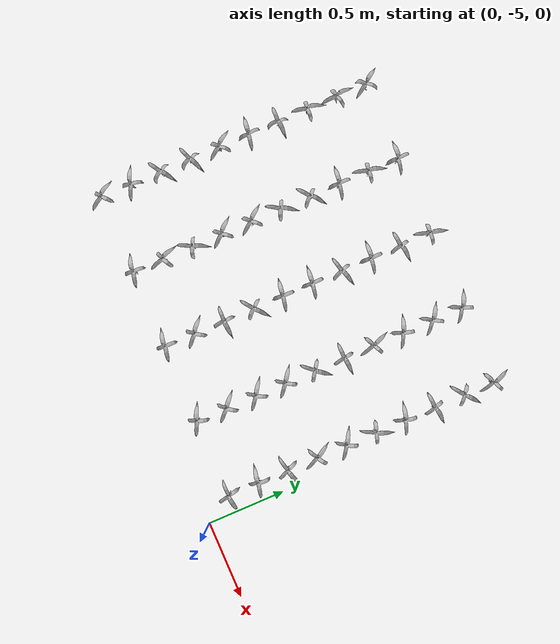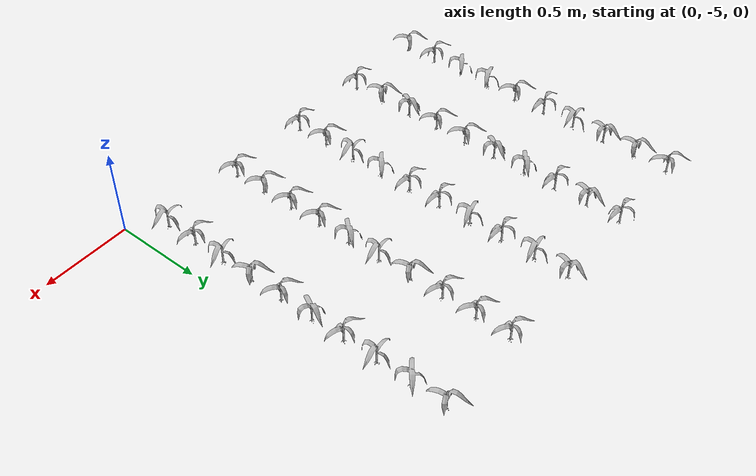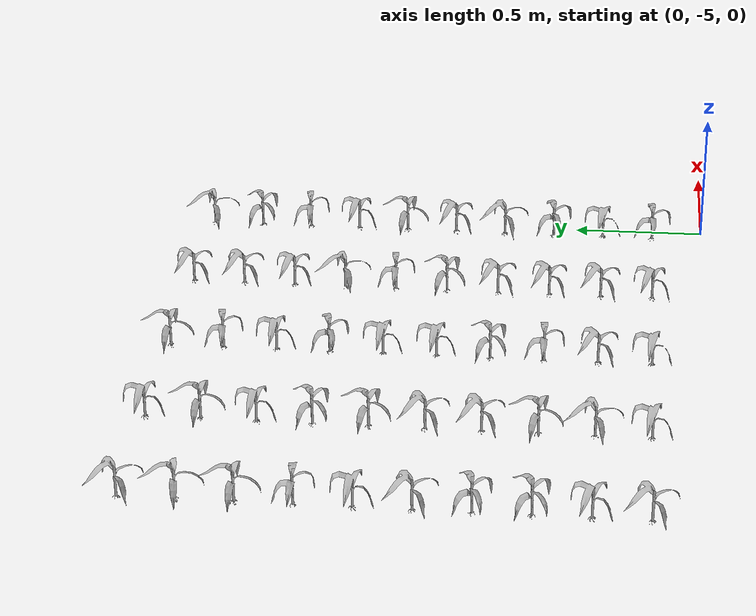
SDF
<sdf version="1.7">
 <world name="default">
  <model name="maize_-2.1093609480429203_-4.8">
   <static>1</static>
   <link name="link">
    <inertial>
     <mass>0.2</mass>
     <inertia>
      <ixx>0.166667</ixx>
      <ixy>0</ixy>
      <ixz>0</ixz>
      <iyy>0.166667</iyy>
      <iyz>0</iyz>
      <izz>0.166667</izz>
     </inertia>
    </inertial>
    <collision name="collision">
     <geometry><mesh><uri>model://corn_3/meshes/corn.dae</uri><scale>0.25 0.25 0.25</scale></mesh></geometry>
     <surface>
      <friction><ode><mu>0</mu><mu2>0</mu2></ode></friction>
      <contact><ode><kp>0</kp><kd>0</kd><max_vel>0</max_vel><min_depth>0.002</min_depth></ode></contact>
     </surface>
    </collision>
    <visual name="visual">
     <geometry><mesh><uri>model://corn_3/meshes/corn.dae</uri><scale>0.25 0.25 0.25</scale></mesh></geometry>
    </visual>
    <velocity_decay><linear>0</linear><angular>0</angular></velocity_decay>
   </link>
   <pose>-2.10936 -4.8 0.05 0 -0 2.23177</pose>
  </model>
  <model name="maize_-2.1093609480429203_-4.6049999999999995">
   <static>1</static>
   <link name="link">
    <inertial>
     <mass>0.2</mass>
     <inertia>
      <ixx>0.166667</ixx>
      <ixy>0</ixy>
      <ixz>0</ixz>
      <iyy>0.166667</iyy>
      <iyz>0</iyz>
      <izz>0.166667</izz>
     </inertia>
    </inertial>
    <collision name="collision">
     <geometry><mesh><uri>model://corn_3/meshes/corn.dae</uri><scale>0.25 0.25 0.25</scale></mesh></geometry>
     <surface>
      <friction><ode><mu>0</mu><mu2>0</mu2></ode></friction>
      <contact><ode><kp>0</kp><kd>0</kd><max_vel>0</max_vel><min_depth>0.002</min_depth></ode></contact>
     </surface>
    </collision>
    <visual name="visual">
     <geometry><mesh><uri>model://corn_3/meshes/corn.dae</uri><scale>0.25 0.25 0.25</scale></mesh></geometry>
    </visual>
    <velocity_decay><linear>0</linear><angular>0</angular></velocity_decay>
   </link>
   <pose>-2.10936 -4.605 0.05 0 -0 2.81732</pose>
  </model>
  <model name="maize_-2.1093609480429203_-4.41">
   <static>1</static>
   <link name="link">
    <inertial>
     <mass>0.2</mass>
     <inertia>
      <ixx>0.166667</ixx>
      <ixy>0</ixy>
      <ixz>0</ixz>
      <iyy>0.166667</iyy>
      <iyz>0</iyz>
      <izz>0.166667</izz>
     </inertia>
    </inertial>
    <collision name="collision">
     <geometry><mesh><uri>model://corn_3/meshes/corn.dae</uri><scale>0.25 0.25 0.25</scale></mesh></geometry>
     <surface>
      <friction><ode><mu>0</mu><mu2>0</mu2></ode></friction>
      <contact><ode><kp>0</kp><kd>0</kd><max_vel>0</max_vel><min_depth>0.002</min_depth></ode></contact>
     </surface>
    </collision>
    <visual name="visual">
     <geometry><mesh><uri>model://corn_3/meshes/corn.dae</uri><scale>0.25 0.25 0.25</scale></mesh></geometry>
    </visual>
    <velocity_decay><linear>0</linear><angular>0</angular></velocity_decay>
   </link>
   <pose>-2.10936 -4.41 0.05 0 -0 0.654938</pose>
  </model>
  <model name="maize_-2.1093609480429203_-4.215">
   <static>1</static>
   <link name="link">
    <inertial>
     <mass>0.2</mass>
     <inertia>
      <ixx>0.166667</ixx>
      <ixy>0</ixy>
      <ixz>0</ixz>
      <iyy>0.166667</iyy>
      <iyz>0</iyz>
      <izz>0.166667</izz>
     </inertia>
    </inertial>
    <collision name="collision">
     <geometry><mesh><uri>model://corn_3/meshes/corn.dae</uri><scale>0.25 0.25 0.25</scale></mesh></geometry>
     <surface>
      <friction><ode><mu>0</mu><mu2>0</mu2></ode></friction>
      <contact><ode><kp>0</kp><kd>0</kd><max_vel>0</max_vel><min_depth>0.002</min_depth></ode></contact>
     </surface>
    </collision>
    <visual name="visual">
     <geometry><mesh><uri>model://corn_3/meshes/corn.dae</uri><scale>0.25 0.25 0.25</scale></mesh></geometry>
    </visual>
    <velocity_decay><linear>0</linear><angular>0</angular></velocity_decay>
   </link>
   <pose>-2.10936 -4.215 0.05 0 -0 0.460829</pose>
  </model>
  <model name="maize_-2.1093609480429203_-4.02">
   <static>1</static>
   <link name="link">
    <inertial>
     <mass>0.2</mass>
     <inertia>
      <ixx>0.166667</ixx>
      <ixy>0</ixy>
      <ixz>0</ixz>
      <iyy>0.166667</iyy>
      <iyz>0</iyz>
      <izz>0.166667</izz>
     </inertia>
    </inertial>
    <collision name="collision">
     <geometry><mesh><uri>model://corn_3/meshes/corn.dae</uri><scale>0.25 0.25 0.25</scale></mesh></geometry>
     <surface>
      <friction><ode><mu>0</mu><mu2>0</mu2></ode></friction>
      <contact><ode><kp>0</kp><kd>0</kd><max_vel>0</max_vel><min_depth>0.002</min_depth></ode></contact>
     </surface>
    </collision>
    <visual name="visual">
     <geometry><mesh><uri>model://corn_3/meshes/corn.dae</uri><scale>0.25 0.25 0.25</scale></mesh></geometry>
    </visual>
    <velocity_decay><linear>0</linear><angular>0</angular></velocity_decay>
   </link>
   <pose>-2.10936 -4.02 0.05 0 -0 2.2772</pose>
  </model>
  <model name="maize_-2.1093609480429203_-3.8249999999999997">
   <static>1</static>
   <link name="link">
    <inertial>
     <mass>0.2</mass>
     <inertia>
      <ixx>0.166667</ixx>
      <ixy>0</ixy>
      <ixz>0</ixz>
      <iyy>0.166667</iyy>
      <iyz>0</iyz>
      <izz>0.166667</izz>
     </inertia>
    </inertial>
    <collision name="collision">
     <geometry><mesh><uri>model://corn_3/meshes/corn.dae</uri><scale>0.25 0.25 0.25</scale></mesh></geometry>
     <surface>
      <friction><ode><mu>0</mu><mu2>0</mu2></ode></friction>
      <contact><ode><kp>0</kp><kd>0</kd><max_vel>0</max_vel><min_depth>0.002</min_depth></ode></contact>
     </surface>
    </collision>
    <visual name="visual">
     <geometry><mesh><uri>model://corn_3/meshes/corn.dae</uri><scale>0.25 0.25 0.25</scale></mesh></geometry>
    </visual>
    <velocity_decay><linear>0</linear><angular>0</angular></velocity_decay>
   </link>
   <pose>-2.10936 -3.825 0.05 0 -0 3.05275</pose>
  </model>
  <model name="maize_-2.1093609480429203_-3.63">
   <static>1</static>
   <link name="link">
    <inertial>
     <mass>0.2</mass>
     <inertia>
      <ixx>0.166667</ixx>
      <ixy>0</ixy>
      <ixz>0</ixz>
      <iyy>0.166667</iyy>
      <iyz>0</iyz>
      <izz>0.166667</izz>
     </inertia>
    </inertial>
    <collision name="collision">
     <geometry><mesh><uri>model://corn_3/meshes/corn.dae</uri><scale>0.25 0.25 0.25</scale></mesh></geometry>
     <surface>
      <friction><ode><mu>0</mu><mu2>0</mu2></ode></friction>
      <contact><ode><kp>0</kp><kd>0</kd><max_vel>0</max_vel><min_depth>0.002</min_depth></ode></contact>
     </surface>
    </collision>
    <visual name="visual">
     <geometry><mesh><uri>model://corn_3/meshes/corn.dae</uri><scale>0.25 0.25 0.25</scale></mesh></geometry>
    </visual>
    <velocity_decay><linear>0</linear><angular>0</angular></velocity_decay>
   </link>
   <pose>-2.10936 -3.63 0.05 0 -0 0.080999</pose>
  </model>
  <model name="maize_-2.1093609480429203_-3.4349999999999996">
   <static>1</static>
   <link name="link">
    <inertial>
     <mass>0.2</mass>
     <inertia>
      <ixx>0.166667</ixx>
      <ixy>0</ixy>
      <ixz>0</ixz>
      <iyy>0.166667</iyy>
      <iyz>0</iyz>
      <izz>0.166667</izz>
     </inertia>
    </inertial>
    <collision name="collision">
     <geometry><mesh><uri>model://corn_3/meshes/corn.dae</uri><scale>0.25 0.25 0.25</scale></mesh></geometry>
     <surface>
      <friction><ode><mu>0</mu><mu2>0</mu2></ode></friction>
      <contact><ode><kp>0</kp><kd>0</kd><max_vel>0</max_vel><min_depth>0.002</min_depth></ode></contact>
     </surface>
    </collision>
    <visual name="visual">
     <geometry><mesh><uri>model://corn_3/meshes/corn.dae</uri><scale>0.25 0.25 0.25</scale></mesh></geometry>
    </visual>
    <velocity_decay><linear>0</linear><angular>0</angular></velocity_decay>
   </link>
   <pose>-2.10936 -3.435 0.05 0 -0 1.42408</pose>
  </model>
  <model name="maize_-2.1093609480429203_-3.2399999999999998">
   <static>1</static>
   <link name="link">
    <inertial>
     <mass>0.2</mass>
     <inertia>
      <ixx>0.166667</ixx>
      <ixy>0</ixy>
      <ixz>0</ixz>
      <iyy>0.166667</iyy>
      <iyz>0</iyz>
      <izz>0.166667</izz>
     </inertia>
    </inertial>
    <collision name="collision">
     <geometry><mesh><uri>model://corn_3/meshes/corn.dae</uri><scale>0.25 0.25 0.25</scale></mesh></geometry>
     <surface>
      <friction><ode><mu>0</mu><mu2>0</mu2></ode></friction>
      <contact><ode><kp>0</kp><kd>0</kd><max_vel>0</max_vel><min_depth>0.002</min_depth></ode></contact>
     </surface>
    </collision>
    <visual name="visual">
     <geometry><mesh><uri>model://corn_3/meshes/corn.dae</uri><scale>0.25 0.25 0.25</scale></mesh></geometry>
    </visual>
    <velocity_decay><linear>0</linear><angular>0</angular></velocity_decay>
   </link>
   <pose>-2.10936 -3.24 0.05 0 -0 1.7016</pose>
  </model>
  <model name="maize_-2.1093609480429203_-3.045">
   <static>1</static>
   <link name="link">
    <inertial>
     <mass>0.2</mass>
     <inertia>
      <ixx>0.166667</ixx>
      <ixy>0</ixy>
      <ixz>0</ixz>
      <iyy>0.166667</iyy>
      <iyz>0</iyz>
      <izz>0.166667</izz>
     </inertia>
    </inertial>
    <collision name="collision">
     <geometry><mesh><uri>model://corn_3/meshes/corn.dae</uri><scale>0.25 0.25 0.25</scale></mesh></geometry>
     <surface>
      <friction><ode><mu>0</mu><mu2>0</mu2></ode></friction>
      <contact><ode><kp>0</kp><kd>0</kd><max_vel>0</max_vel><min_depth>0.002</min_depth></ode></contact>
     </surface>
    </collision>
    <visual name="visual">
     <geometry><mesh><uri>model://corn_3/meshes/corn.dae</uri><scale>0.25 0.25 0.25</scale></mesh></geometry>
    </visual>
    <velocity_decay><linear>0</linear><angular>0</angular></velocity_decay>
   </link>
   <pose>-2.10936 -3.045 0.05 0 -0 2.25263</pose>
  </model>
  <model name="maize_-1.6134747127982658_-4.8">
   <static>1</static>
   <link name="link">
    <inertial>
     <mass>0.2</mass>
     <inertia>
      <ixx>0.166667</ixx>
      <ixy>0</ixy>
      <ixz>0</ixz>
      <iyy>0.166667</iyy>
      <iyz>0</iyz>
      <izz>0.166667</izz>
     </inertia>
    </inertial>
    <collision name="collision">
     <geometry><mesh><uri>model://corn_3/meshes/corn.dae</uri><scale>0.25 0.25 0.25</scale></mesh></geometry>
     <surface>
      <friction><ode><mu>0</mu><mu2>0</mu2></ode></friction>
      <contact><ode><kp>0</kp><kd>0</kd><max_vel>0</max_vel><min_depth>0.002</min_depth></ode></contact>
     </surface>
    </collision>
    <visual name="visual">
     <geometry><mesh><uri>model://corn_3/meshes/corn.dae</uri><scale>0.25 0.25 0.25</scale></mesh></geometry>
    </visual>
    <velocity_decay><linear>0</linear><angular>0</angular></velocity_decay>
   </link>
   <pose>-1.61347 -4.8 0.05 0 -0 2.98757</pose>
  </model>
  <model name="maize_-1.6134747127982658_-4.6049999999999995">
   <static>1</static>
   <link name="link">
    <inertial>
     <mass>0.2</mass>
     <inertia>
      <ixx>0.166667</ixx>
      <ixy>0</ixy>
      <ixz>0</ixz>
      <iyy>0.166667</iyy>
      <iyz>0</iyz>
      <izz>0.166667</izz>
     </inertia>
    </inertial>
    <collision name="collision">
     <geometry><mesh><uri>model://corn_3/meshes/corn.dae</uri><scale>0.25 0.25 0.25</scale></mesh></geometry>
     <surface>
      <friction><ode><mu>0</mu><mu2>0</mu2></ode></friction>
      <contact><ode><kp>0</kp><kd>0</kd><max_vel>0</max_vel><min_depth>0.002</min_depth></ode></contact>
     </surface>
    </collision>
    <visual name="visual">
     <geometry><mesh><uri>model://corn_3/meshes/corn.dae</uri><scale>0.25 0.25 0.25</scale></mesh></geometry>
    </visual>
    <velocity_decay><linear>0</linear><angular>0</angular></velocity_decay>
   </link>
   <pose>-1.61347 -4.605 0.05 0 -0 1.98573</pose>
  </model>
  <model name="maize_-1.6134747127982658_-4.41">
   <static>1</static>
   <link name="link">
    <inertial>
     <mass>0.2</mass>
     <inertia>
      <ixx>0.166667</ixx>
      <ixy>0</ixy>
      <ixz>0</ixz>
      <iyy>0.166667</iyy>
      <iyz>0</iyz>
      <izz>0.166667</izz>
     </inertia>
    </inertial>
    <collision name="collision">
     <geometry><mesh><uri>model://corn_3/meshes/corn.dae</uri><scale>0.25 0.25 0.25</scale></mesh></geometry>
     <surface>
      <friction><ode><mu>0</mu><mu2>0</mu2></ode></friction>
      <contact><ode><kp>0</kp><kd>0</kd><max_vel>0</max_vel><min_depth>0.002</min_depth></ode></contact>
     </surface>
    </collision>
    <visual name="visual">
     <geometry><mesh><uri>model://corn_3/meshes/corn.dae</uri><scale>0.25 0.25 0.25</scale></mesh></geometry>
    </visual>
    <velocity_decay><linear>0</linear><angular>0</angular></velocity_decay>
   </link>
   <pose>-1.61347 -4.41 0.05 0 -0 1.18002</pose>
  </model>
  <model name="maize_-1.6134747127982658_-4.215">
   <static>1</static>
   <link name="link">
    <inertial>
     <mass>0.2</mass>
     <inertia>
      <ixx>0.166667</ixx>
      <ixy>0</ixy>
      <ixz>0</ixz>
      <iyy>0.166667</iyy>
      <iyz>0</iyz>
      <izz>0.166667</izz>
     </inertia>
    </inertial>
    <collision name="collision">
     <geometry><mesh><uri>model://corn_3/meshes/corn.dae</uri><scale>0.25 0.25 0.25</scale></mesh></geometry>
     <surface>
      <friction><ode><mu>0</mu><mu2>0</mu2></ode></friction>
      <contact><ode><kp>0</kp><kd>0</kd><max_vel>0</max_vel><min_depth>0.002</min_depth></ode></contact>
     </surface>
    </collision>
    <visual name="visual">
     <geometry><mesh><uri>model://corn_3/meshes/corn.dae</uri><scale>0.25 0.25 0.25</scale></mesh></geometry>
    </visual>
    <velocity_decay><linear>0</linear><angular>0</angular></velocity_decay>
   </link>
   <pose>-1.61347 -4.215 0.05 0 -0 2.3813</pose>
  </model>
  <model name="maize_-1.6134747127982658_-4.02">
   <static>1</static>
   <link name="link">
    <inertial>
     <mass>0.2</mass>
     <inertia>
      <ixx>0.166667</ixx>
      <ixy>0</ixy>
      <ixz>0</ixz>
      <iyy>0.166667</iyy>
      <iyz>0</iyz>
      <izz>0.166667</izz>
     </inertia>
    </inertial>
    <collision name="collision">
     <geometry><mesh><uri>model://corn_3/meshes/corn.dae</uri><scale>0.25 0.25 0.25</scale></mesh></geometry>
     <surface>
      <friction><ode><mu>0</mu><mu2>0</mu2></ode></friction>
      <contact><ode><kp>0</kp><kd>0</kd><max_vel>0</max_vel><min_depth>0.002</min_depth></ode></contact>
     </surface>
    </collision>
    <visual name="visual">
     <geometry><mesh><uri>model://corn_3/meshes/corn.dae</uri><scale>0.25 0.25 0.25</scale></mesh></geometry>
    </visual>
    <velocity_decay><linear>0</linear><angular>0</angular></velocity_decay>
   </link>
   <pose>-1.61347 -4.02 0.05 0 -0 2.31466</pose>
  </model>
  <model name="maize_-1.6134747127982658_-3.8249999999999997">
   <static>1</static>
   <link name="link">
    <inertial>
     <mass>0.2</mass>
     <inertia>
      <ixx>0.166667</ixx>
      <ixy>0</ixy>
      <ixz>0</ixz>
      <iyy>0.166667</iyy>
      <iyz>0</iyz>
      <izz>0.166667</izz>
     </inertia>
    </inertial>
    <collision name="collision">
     <geometry><mesh><uri>model://corn_3/meshes/corn.dae</uri><scale>0.25 0.25 0.25</scale></mesh></geometry>
     <surface>
      <friction><ode><mu>0</mu><mu2>0</mu2></ode></friction>
      <contact><ode><kp>0</kp><kd>0</kd><max_vel>0</max_vel><min_depth>0.002</min_depth></ode></contact>
     </surface>
    </collision>
    <visual name="visual">
     <geometry><mesh><uri>model://corn_3/meshes/corn.dae</uri><scale>0.25 0.25 0.25</scale></mesh></geometry>
    </visual>
    <velocity_decay><linear>0</linear><angular>0</angular></velocity_decay>
   </link>
   <pose>-1.61347 -3.825 0.05 0 -0 1.10345</pose>
  </model>
  <model name="maize_-1.6134747127982658_-3.63">
   <static>1</static>
   <link name="link">
    <inertial>
     <mass>0.2</mass>
     <inertia>
      <ixx>0.166667</ixx>
      <ixy>0</ixy>
      <ixz>0</ixz>
      <iyy>0.166667</iyy>
      <iyz>0</iyz>
      <izz>0.166667</izz>
     </inertia>
    </inertial>
    <collision name="collision">
     <geometry><mesh><uri>model://corn_3/meshes/corn.dae</uri><scale>0.25 0.25 0.25</scale></mesh></geometry>
     <surface>
      <friction><ode><mu>0</mu><mu2>0</mu2></ode></friction>
      <contact><ode><kp>0</kp><kd>0</kd><max_vel>0</max_vel><min_depth>0.002</min_depth></ode></contact>
     </surface>
    </collision>
    <visual name="visual">
     <geometry><mesh><uri>model://corn_3/meshes/corn.dae</uri><scale>0.25 0.25 0.25</scale></mesh></geometry>
    </visual>
    <velocity_decay><linear>0</linear><angular>0</angular></velocity_decay>
   </link>
   <pose>-1.61347 -3.63 0.05 0 -0 0.760696</pose>
  </model>
  <model name="maize_-1.6134747127982658_-3.4349999999999996">
   <static>1</static>
   <link name="link">
    <inertial>
     <mass>0.2</mass>
     <inertia>
      <ixx>0.166667</ixx>
      <ixy>0</ixy>
      <ixz>0</ixz>
      <iyy>0.166667</iyy>
      <iyz>0</iyz>
      <izz>0.166667</izz>
     </inertia>
    </inertial>
    <collision name="collision">
     <geometry><mesh><uri>model://corn_3/meshes/corn.dae</uri><scale>0.25 0.25 0.25</scale></mesh></geometry>
     <surface>
      <friction><ode><mu>0</mu><mu2>0</mu2></ode></friction>
      <contact><ode><kp>0</kp><kd>0</kd><max_vel>0</max_vel><min_depth>0.002</min_depth></ode></contact>
     </surface>
    </collision>
    <visual name="visual">
     <geometry><mesh><uri>model://corn_3/meshes/corn.dae</uri><scale>0.25 0.25 0.25</scale></mesh></geometry>
    </visual>
    <velocity_decay><linear>0</linear><angular>0</angular></velocity_decay>
   </link>
   <pose>-1.61347 -3.435 0.05 0 -0 3.0493</pose>
  </model>
  <model name="maize_-1.6134747127982658_-3.2399999999999998">
   <static>1</static>
   <link name="link">
    <inertial>
     <mass>0.2</mass>
     <inertia>
      <ixx>0.166667</ixx>
      <ixy>0</ixy>
      <ixz>0</ixz>
      <iyy>0.166667</iyy>
      <iyz>0</iyz>
      <izz>0.166667</izz>
     </inertia>
    </inertial>
    <collision name="collision">
     <geometry><mesh><uri>model://corn_3/meshes/corn.dae</uri><scale>0.25 0.25 0.25</scale></mesh></geometry>
     <surface>
      <friction><ode><mu>0</mu><mu2>0</mu2></ode></friction>
      <contact><ode><kp>0</kp><kd>0</kd><max_vel>0</max_vel><min_depth>0.002</min_depth></ode></contact>
     </surface>
    </collision>
    <visual name="visual">
     <geometry><mesh><uri>model://corn_3/meshes/corn.dae</uri><scale>0.25 0.25 0.25</scale></mesh></geometry>
    </visual>
    <velocity_decay><linear>0</linear><angular>0</angular></velocity_decay>
   </link>
   <pose>-1.61347 -3.24 0.05 0 -0 1.35911</pose>
  </model>
  <model name="maize_-1.6134747127982658_-3.045">
   <static>1</static>
   <link name="link">
    <inertial>
     <mass>0.2</mass>
     <inertia>
      <ixx>0.166667</ixx>
      <ixy>0</ixy>
      <ixz>0</ixz>
      <iyy>0.166667</iyy>
      <iyz>0</iyz>
      <izz>0.166667</izz>
     </inertia>
    </inertial>
    <collision name="collision">
     <geometry><mesh><uri>model://corn_3/meshes/corn.dae</uri><scale>0.25 0.25 0.25</scale></mesh></geometry>
     <surface>
      <friction><ode><mu>0</mu><mu2>0</mu2></ode></friction>
      <contact><ode><kp>0</kp><kd>0</kd><max_vel>0</max_vel><min_depth>0.002</min_depth></ode></contact>
     </surface>
    </collision>
    <visual name="visual">
     <geometry><mesh><uri>model://corn_3/meshes/corn.dae</uri><scale>0.25 0.25 0.25</scale></mesh></geometry>
    </visual>
    <velocity_decay><linear>0</linear><angular>0</angular></velocity_decay>
   </link>
   <pose>-1.61347 -3.045 0.05 0 -0 3.06983</pose>
  </model>
  <model name="maize_-1.1183337078909452_-4.8">
   <static>1</static>
   <link name="link">
    <inertial>
     <mass>0.2</mass>
     <inertia>
      <ixx>0.166667</ixx>
      <ixy>0</ixy>
      <ixz>0</ixz>
      <iyy>0.166667</iyy>
      <iyz>0</iyz>
      <izz>0.166667</izz>
     </inertia>
    </inertial>
    <collision name="collision">
     <geometry><mesh><uri>model://corn_3/meshes/corn.dae</uri><scale>0.25 0.25 0.25</scale></mesh></geometry>
     <surface>
      <friction><ode><mu>0</mu><mu2>0</mu2></ode></friction>
      <contact><ode><kp>0</kp><kd>0</kd><max_vel>0</max_vel><min_depth>0.002</min_depth></ode></contact>
     </surface>
    </collision>
    <visual name="visual">
     <geometry><mesh><uri>model://corn_3/meshes/corn.dae</uri><scale>0.25 0.25 0.25</scale></mesh></geometry>
    </visual>
    <velocity_decay><linear>0</linear><angular>0</angular></velocity_decay>
   </link>
   <pose>-1.11833 -4.8 0.05 0 -0 3.0388</pose>
  </model>
  <model name="maize_-1.1183337078909452_-4.6049999999999995">
   <static>1</static>
   <link name="link">
    <inertial>
     <mass>0.2</mass>
     <inertia>
      <ixx>0.166667</ixx>
      <ixy>0</ixy>
      <ixz>0</ixz>
      <iyy>0.166667</iyy>
      <iyz>0</iyz>
      <izz>0.166667</izz>
     </inertia>
    </inertial>
    <collision name="collision">
     <geometry><mesh><uri>model://corn_3/meshes/corn.dae</uri><scale>0.25 0.25 0.25</scale></mesh></geometry>
     <surface>
      <friction><ode><mu>0</mu><mu2>0</mu2></ode></friction>
      <contact><ode><kp>0</kp><kd>0</kd><max_vel>0</max_vel><min_depth>0.002</min_depth></ode></contact>
     </surface>
    </collision>
    <visual name="visual">
     <geometry><mesh><uri>model://corn_3/meshes/corn.dae</uri><scale>0.25 0.25 0.25</scale></mesh></geometry>
    </visual>
    <velocity_decay><linear>0</linear><angular>0</angular></velocity_decay>
   </link>
   <pose>-1.11833 -4.605 0.05 0 -0 2.49509</pose>
  </model>
  <model name="maize_-1.1183337078909452_-4.41">
   <static>1</static>
   <link name="link">
    <inertial>
     <mass>0.2</mass>
     <inertia>
      <ixx>0.166667</ixx>
      <ixy>0</ixy>
      <ixz>0</ixz>
      <iyy>0.166667</iyy>
      <iyz>0</iyz>
      <izz>0.166667</izz>
     </inertia>
    </inertial>
    <collision name="collision">
     <geometry><mesh><uri>model://corn_3/meshes/corn.dae</uri><scale>0.25 0.25 0.25</scale></mesh></geometry>
     <surface>
      <friction><ode><mu>0</mu><mu2>0</mu2></ode></friction>
      <contact><ode><kp>0</kp><kd>0</kd><max_vel>0</max_vel><min_depth>0.002</min_depth></ode></contact>
     </surface>
    </collision>
    <visual name="visual">
     <geometry><mesh><uri>model://corn_3/meshes/corn.dae</uri><scale>0.25 0.25 0.25</scale></mesh></geometry>
    </visual>
    <velocity_decay><linear>0</linear><angular>0</angular></velocity_decay>
   </link>
   <pose>-1.11833 -4.41 0.05 0 -0 0.086443</pose>
  </model>
  <model name="maize_-1.1183337078909452_-4.215">
   <static>1</static>
   <link name="link">
    <inertial>
     <mass>0.2</mass>
     <inertia>
      <ixx>0.166667</ixx>
      <ixy>0</ixy>
      <ixz>0</ixz>
      <iyy>0.166667</iyy>
      <iyz>0</iyz>
      <izz>0.166667</izz>
     </inertia>
    </inertial>
    <collision name="collision">
     <geometry><mesh><uri>model://corn_3/meshes/corn.dae</uri><scale>0.25 0.25 0.25</scale></mesh></geometry>
     <surface>
      <friction><ode><mu>0</mu><mu2>0</mu2></ode></friction>
      <contact><ode><kp>0</kp><kd>0</kd><max_vel>0</max_vel><min_depth>0.002</min_depth></ode></contact>
     </surface>
    </collision>
    <visual name="visual">
     <geometry><mesh><uri>model://corn_3/meshes/corn.dae</uri><scale>0.25 0.25 0.25</scale></mesh></geometry>
    </visual>
    <velocity_decay><linear>0</linear><angular>0</angular></velocity_decay>
   </link>
   <pose>-1.11833 -4.215 0.05 0 -0 0.749481</pose>
  </model>
  <model name="maize_-1.1183337078909452_-4.02">
   <static>1</static>
   <link name="link">
    <inertial>
     <mass>0.2</mass>
     <inertia>
      <ixx>0.166667</ixx>
      <ixy>0</ixy>
      <ixz>0</ixz>
      <iyy>0.166667</iyy>
      <iyz>0</iyz>
      <izz>0.166667</izz>
     </inertia>
    </inertial>
    <collision name="collision">
     <geometry><mesh><uri>model://corn_3/meshes/corn.dae</uri><scale>0.25 0.25 0.25</scale></mesh></geometry>
     <surface>
      <friction><ode><mu>0</mu><mu2>0</mu2></ode></friction>
      <contact><ode><kp>0</kp><kd>0</kd><max_vel>0</max_vel><min_depth>0.002</min_depth></ode></contact>
     </surface>
    </collision>
    <visual name="visual">
     <geometry><mesh><uri>model://corn_3/meshes/corn.dae</uri><scale>0.25 0.25 0.25</scale></mesh></geometry>
    </visual>
    <velocity_decay><linear>0</linear><angular>0</angular></velocity_decay>
   </link>
   <pose>-1.11833 -4.02 0.05 0 -0 3.0415</pose>
  </model>
  <model name="maize_-1.1183337078909452_-3.8249999999999997">
   <static>1</static>
   <link name="link">
    <inertial>
     <mass>0.2</mass>
     <inertia>
      <ixx>0.166667</ixx>
      <ixy>0</ixy>
      <ixz>0</ixz>
      <iyy>0.166667</iyy>
      <iyz>0</iyz>
      <izz>0.166667</izz>
     </inertia>
    </inertial>
    <collision name="collision">
     <geometry><mesh><uri>model://corn_3/meshes/corn.dae</uri><scale>0.25 0.25 0.25</scale></mesh></geometry>
     <surface>
      <friction><ode><mu>0</mu><mu2>0</mu2></ode></friction>
      <contact><ode><kp>0</kp><kd>0</kd><max_vel>0</max_vel><min_depth>0.002</min_depth></ode></contact>
     </surface>
    </collision>
    <visual name="visual">
     <geometry><mesh><uri>model://corn_3/meshes/corn.dae</uri><scale>0.25 0.25 0.25</scale></mesh></geometry>
    </visual>
    <velocity_decay><linear>0</linear><angular>0</angular></velocity_decay>
   </link>
   <pose>-1.11833 -3.825 0.05 0 -0 3.07552</pose>
  </model>
  <model name="maize_-1.1183337078909452_-3.63">
   <static>1</static>
   <link name="link">
    <inertial>
     <mass>0.2</mass>
     <inertia>
      <ixx>0.166667</ixx>
      <ixy>0</ixy>
      <ixz>0</ixz>
      <iyy>0.166667</iyy>
      <iyz>0</iyz>
      <izz>0.166667</izz>
     </inertia>
    </inertial>
    <collision name="collision">
     <geometry><mesh><uri>model://corn_3/meshes/corn.dae</uri><scale>0.25 0.25 0.25</scale></mesh></geometry>
     <surface>
      <friction><ode><mu>0</mu><mu2>0</mu2></ode></friction>
      <contact><ode><kp>0</kp><kd>0</kd><max_vel>0</max_vel><min_depth>0.002</min_depth></ode></contact>
     </surface>
    </collision>
    <visual name="visual">
     <geometry><mesh><uri>model://corn_3/meshes/corn.dae</uri><scale>0.25 0.25 0.25</scale></mesh></geometry>
    </visual>
    <velocity_decay><linear>0</linear><angular>0</angular></velocity_decay>
   </link>
   <pose>-1.11833 -3.63 0.05 0 -0 0.350117</pose>
  </model>
  <model name="maize_-1.1183337078909452_-3.4349999999999996">
   <static>1</static>
   <link name="link">
    <inertial>
     <mass>0.2</mass>
     <inertia>
      <ixx>0.166667</ixx>
      <ixy>0</ixy>
      <ixz>0</ixz>
      <iyy>0.166667</iyy>
      <iyz>0</iyz>
      <izz>0.166667</izz>
     </inertia>
    </inertial>
    <collision name="collision">
     <geometry><mesh><uri>model://corn_3/meshes/corn.dae</uri><scale>0.25 0.25 0.25</scale></mesh></geometry>
     <surface>
      <friction><ode><mu>0</mu><mu2>0</mu2></ode></friction>
      <contact><ode><kp>0</kp><kd>0</kd><max_vel>0</max_vel><min_depth>0.002</min_depth></ode></contact>
     </surface>
    </collision>
    <visual name="visual">
     <geometry><mesh><uri>model://corn_3/meshes/corn.dae</uri><scale>0.25 0.25 0.25</scale></mesh></geometry>
    </visual>
    <velocity_decay><linear>0</linear><angular>0</angular></velocity_decay>
   </link>
   <pose>-1.11833 -3.435 0.05 0 -0 3.08679</pose>
  </model>
  <model name="maize_-1.1183337078909452_-3.2399999999999998">
   <static>1</static>
   <link name="link">
    <inertial>
     <mass>0.2</mass>
     <inertia>
      <ixx>0.166667</ixx>
      <ixy>0</ixy>
      <ixz>0</ixz>
      <iyy>0.166667</iyy>
      <iyz>0</iyz>
      <izz>0.166667</izz>
     </inertia>
    </inertial>
    <collision name="collision">
     <geometry><mesh><uri>model://corn_3/meshes/corn.dae</uri><scale>0.25 0.25 0.25</scale></mesh></geometry>
     <surface>
      <friction><ode><mu>0</mu><mu2>0</mu2></ode></friction>
      <contact><ode><kp>0</kp><kd>0</kd><max_vel>0</max_vel><min_depth>0.002</min_depth></ode></contact>
     </surface>
    </collision>
    <visual name="visual">
     <geometry><mesh><uri>model://corn_3/meshes/corn.dae</uri><scale>0.25 0.25 0.25</scale></mesh></geometry>
    </visual>
    <velocity_decay><linear>0</linear><angular>0</angular></velocity_decay>
   </link>
   <pose>-1.11833 -3.24 0.05 0 -0 0.205107</pose>
  </model>
  <model name="maize_-1.1183337078909452_-3.045">
   <static>1</static>
   <link name="link">
    <inertial>
     <mass>0.2</mass>
     <inertia>
      <ixx>0.166667</ixx>
      <ixy>0</ixy>
      <ixz>0</ixz>
      <iyy>0.166667</iyy>
      <iyz>0</iyz>
      <izz>0.166667</izz>
     </inertia>
    </inertial>
    <collision name="collision">
     <geometry><mesh><uri>model://corn_3/meshes/corn.dae</uri><scale>0.25 0.25 0.25</scale></mesh></geometry>
     <surface>
      <friction><ode><mu>0</mu><mu2>0</mu2></ode></friction>
      <contact><ode><kp>0</kp><kd>0</kd><max_vel>0</max_vel><min_depth>0.002</min_depth></ode></contact>
     </surface>
    </collision>
    <visual name="visual">
     <geometry><mesh><uri>model://corn_3/meshes/corn.dae</uri><scale>0.25 0.25 0.25</scale></mesh></geometry>
    </visual>
    <velocity_decay><linear>0</linear><angular>0</angular></velocity_decay>
   </link>
   <pose>-1.11833 -3.045 0.05 0 -0 1.36177</pose>
  </model>
  <model name="maize_-0.6239370944114593_-4.8">
   <static>1</static>
   <link name="link">
    <inertial>
     <mass>0.2</mass>
     <inertia>
      <ixx>0.166667</ixx>
      <ixy>0</ixy>
      <ixz>0</ixz>
      <iyy>0.166667</iyy>
      <iyz>0</iyz>
      <izz>0.166667</izz>
     </inertia>
    </inertial>
    <collision name="collision">
     <geometry><mesh><uri>model://corn_3/meshes/corn.dae</uri><scale>0.25 0.25 0.25</scale></mesh></geometry>
     <surface>
      <friction><ode><mu>0</mu><mu2>0</mu2></ode></friction>
      <contact><ode><kp>0</kp><kd>0</kd><max_vel>0</max_vel><min_depth>0.002</min_depth></ode></contact>
     </surface>
    </collision>
    <visual name="visual">
     <geometry><mesh><uri>model://corn_3/meshes/corn.dae</uri><scale>0.25 0.25 0.25</scale></mesh></geometry>
    </visual>
    <velocity_decay><linear>0</linear><angular>0</angular></velocity_decay>
   </link>
   <pose>-0.623937 -4.8 0.05 0 -0 2.77727</pose>
  </model>
  <model name="maize_-0.6239370944114593_-4.6049999999999995">
   <static>1</static>
   <link name="link">
    <inertial>
     <mass>0.2</mass>
     <inertia>
      <ixx>0.166667</ixx>
      <ixy>0</ixy>
      <ixz>0</ixz>
      <iyy>0.166667</iyy>
      <iyz>0</iyz>
      <izz>0.166667</izz>
     </inertia>
    </inertial>
    <collision name="collision">
     <geometry><mesh><uri>model://corn_3/meshes/corn.dae</uri><scale>0.25 0.25 0.25</scale></mesh></geometry>
     <surface>
      <friction><ode><mu>0</mu><mu2>0</mu2></ode></friction>
      <contact><ode><kp>0</kp><kd>0</kd><max_vel>0</max_vel><min_depth>0.002</min_depth></ode></contact>
     </surface>
    </collision>
    <visual name="visual">
     <geometry><mesh><uri>model://corn_3/meshes/corn.dae</uri><scale>0.25 0.25 0.25</scale></mesh></geometry>
    </visual>
    <velocity_decay><linear>0</linear><angular>0</angular></velocity_decay>
   </link>
   <pose>-0.623937 -4.605 0.05 0 -0 2.46779</pose>
  </model>
  <model name="maize_-0.6239370944114593_-4.41">
   <static>1</static>
   <link name="link">
    <inertial>
     <mass>0.2</mass>
     <inertia>
      <ixx>0.166667</ixx>
      <ixy>0</ixy>
      <ixz>0</ixz>
      <iyy>0.166667</iyy>
      <iyz>0</iyz>
      <izz>0.166667</izz>
     </inertia>
    </inertial>
    <collision name="collision">
     <geometry><mesh><uri>model://corn_3/meshes/corn.dae</uri><scale>0.25 0.25 0.25</scale></mesh></geometry>
     <surface>
      <friction><ode><mu>0</mu><mu2>0</mu2></ode></friction>
      <contact><ode><kp>0</kp><kd>0</kd><max_vel>0</max_vel><min_depth>0.002</min_depth></ode></contact>
     </surface>
    </collision>
    <visual name="visual">
     <geometry><mesh><uri>model://corn_3/meshes/corn.dae</uri><scale>0.25 0.25 0.25</scale></mesh></geometry>
    </visual>
    <velocity_decay><linear>0</linear><angular>0</angular></velocity_decay>
   </link>
   <pose>-0.623937 -4.41 0.05 0 -0 2.58588</pose>
  </model>
  <model name="maize_-0.6239370944114593_-4.215">
   <static>1</static>
   <link name="link">
    <inertial>
     <mass>0.2</mass>
     <inertia>
      <ixx>0.166667</ixx>
      <ixy>0</ixy>
      <ixz>0</ixz>
      <iyy>0.166667</iyy>
      <iyz>0</iyz>
      <izz>0.166667</izz>
     </inertia>
    </inertial>
    <collision name="collision">
     <geometry><mesh><uri>model://corn_3/meshes/corn.dae</uri><scale>0.25 0.25 0.25</scale></mesh></geometry>
     <surface>
      <friction><ode><mu>0</mu><mu2>0</mu2></ode></friction>
      <contact><ode><kp>0</kp><kd>0</kd><max_vel>0</max_vel><min_depth>0.002</min_depth></ode></contact>
     </surface>
    </collision>
    <visual name="visual">
     <geometry><mesh><uri>model://corn_3/meshes/corn.dae</uri><scale>0.25 0.25 0.25</scale></mesh></geometry>
    </visual>
    <velocity_decay><linear>0</linear><angular>0</angular></velocity_decay>
   </link>
   <pose>-0.623937 -4.215 0.05 0 -0 2.5616</pose>
  </model>
  <model name="maize_-0.6239370944114593_-4.02">
   <static>1</static>
   <link name="link">
    <inertial>
     <mass>0.2</mass>
     <inertia>
      <ixx>0.166667</ixx>
      <ixy>0</ixy>
      <ixz>0</ixz>
      <iyy>0.166667</iyy>
      <iyz>0</iyz>
      <izz>0.166667</izz>
     </inertia>
    </inertial>
    <collision name="collision">
     <geometry><mesh><uri>model://corn_3/meshes/corn.dae</uri><scale>0.25 0.25 0.25</scale></mesh></geometry>
     <surface>
      <friction><ode><mu>0</mu><mu2>0</mu2></ode></friction>
      <contact><ode><kp>0</kp><kd>0</kd><max_vel>0</max_vel><min_depth>0.002</min_depth></ode></contact>
     </surface>
    </collision>
    <visual name="visual">
     <geometry><mesh><uri>model://corn_3/meshes/corn.dae</uri><scale>0.25 0.25 0.25</scale></mesh></geometry>
    </visual>
    <velocity_decay><linear>0</linear><angular>0</angular></velocity_decay>
   </link>
   <pose>-0.623937 -4.02 0.05 0 -0 0.938311</pose>
  </model>
  <model name="maize_-0.6239370944114593_-3.8249999999999997">
   <static>1</static>
   <link name="link">
    <inertial>
     <mass>0.2</mass>
     <inertia>
      <ixx>0.166667</ixx>
      <ixy>0</ixy>
      <ixz>0</ixz>
      <iyy>0.166667</iyy>
      <iyz>0</iyz>
      <izz>0.166667</izz>
     </inertia>
    </inertial>
    <collision name="collision">
     <geometry><mesh><uri>model://corn_3/meshes/corn.dae</uri><scale>0.25 0.25 0.25</scale></mesh></geometry>
     <surface>
      <friction><ode><mu>0</mu><mu2>0</mu2></ode></friction>
      <contact><ode><kp>0</kp><kd>0</kd><max_vel>0</max_vel><min_depth>0.002</min_depth></ode></contact>
     </surface>
    </collision>
    <visual name="visual">
     <geometry><mesh><uri>model://corn_3/meshes/corn.dae</uri><scale>0.25 0.25 0.25</scale></mesh></geometry>
    </visual>
    <velocity_decay><linear>0</linear><angular>0</angular></velocity_decay>
   </link>
   <pose>-0.623937 -3.825 0.05 0 -0 0.118758</pose>
  </model>
  <model name="maize_-0.6239370944114593_-3.63">
   <static>1</static>
   <link name="link">
    <inertial>
     <mass>0.2</mass>
     <inertia>
      <ixx>0.166667</ixx>
      <ixy>0</ixy>
      <ixz>0</ixz>
      <iyy>0.166667</iyy>
      <iyz>0</iyz>
      <izz>0.166667</izz>
     </inertia>
    </inertial>
    <collision name="collision">
     <geometry><mesh><uri>model://corn_3/meshes/corn.dae</uri><scale>0.25 0.25 0.25</scale></mesh></geometry>
     <surface>
      <friction><ode><mu>0</mu><mu2>0</mu2></ode></friction>
      <contact><ode><kp>0</kp><kd>0</kd><max_vel>0</max_vel><min_depth>0.002</min_depth></ode></contact>
     </surface>
    </collision>
    <visual name="visual">
     <geometry><mesh><uri>model://corn_3/meshes/corn.dae</uri><scale>0.25 0.25 0.25</scale></mesh></geometry>
    </visual>
    <velocity_decay><linear>0</linear><angular>0</angular></velocity_decay>
   </link>
   <pose>-0.623937 -3.63 0.05 0 -0 1.96641</pose>
  </model>
  <model name="maize_-0.6239370944114593_-3.4349999999999996">
   <static>1</static>
   <link name="link">
    <inertial>
     <mass>0.2</mass>
     <inertia>
      <ixx>0.166667</ixx>
      <ixy>0</ixy>
      <ixz>0</ixz>
      <iyy>0.166667</iyy>
      <iyz>0</iyz>
      <izz>0.166667</izz>
     </inertia>
    </inertial>
    <collision name="collision">
     <geometry><mesh><uri>model://corn_3/meshes/corn.dae</uri><scale>0.25 0.25 0.25</scale></mesh></geometry>
     <surface>
      <friction><ode><mu>0</mu><mu2>0</mu2></ode></friction>
      <contact><ode><kp>0</kp><kd>0</kd><max_vel>0</max_vel><min_depth>0.002</min_depth></ode></contact>
     </surface>
    </collision>
    <visual name="visual">
     <geometry><mesh><uri>model://corn_3/meshes/corn.dae</uri><scale>0.25 0.25 0.25</scale></mesh></geometry>
    </visual>
    <velocity_decay><linear>0</linear><angular>0</angular></velocity_decay>
   </link>
   <pose>-0.623937 -3.435 0.05 0 -0 2.7898</pose>
  </model>
  <model name="maize_-0.6239370944114593_-3.2399999999999998">
   <static>1</static>
   <link name="link">
    <inertial>
     <mass>0.2</mass>
     <inertia>
      <ixx>0.166667</ixx>
      <ixy>0</ixy>
      <ixz>0</ixz>
      <iyy>0.166667</iyy>
      <iyz>0</iyz>
      <izz>0.166667</izz>
     </inertia>
    </inertial>
    <collision name="collision">
     <geometry><mesh><uri>model://corn_3/meshes/corn.dae</uri><scale>0.25 0.25 0.25</scale></mesh></geometry>
     <surface>
      <friction><ode><mu>0</mu><mu2>0</mu2></ode></friction>
      <contact><ode><kp>0</kp><kd>0</kd><max_vel>0</max_vel><min_depth>0.002</min_depth></ode></contact>
     </surface>
    </collision>
    <visual name="visual">
     <geometry><mesh><uri>model://corn_3/meshes/corn.dae</uri><scale>0.25 0.25 0.25</scale></mesh></geometry>
    </visual>
    <velocity_decay><linear>0</linear><angular>0</angular></velocity_decay>
   </link>
   <pose>-0.623937 -3.24 0.05 0 -0 2.55331</pose>
  </model>
  <model name="maize_-0.6239370944114593_-3.045">
   <static>1</static>
   <link name="link">
    <inertial>
     <mass>0.2</mass>
     <inertia>
      <ixx>0.166667</ixx>
      <ixy>0</ixy>
      <ixz>0</ixz>
      <iyy>0.166667</iyy>
      <iyz>0</iyz>
      <izz>0.166667</izz>
     </inertia>
    </inertial>
    <collision name="collision">
     <geometry><mesh><uri>model://corn_3/meshes/corn.dae</uri><scale>0.25 0.25 0.25</scale></mesh></geometry>
     <surface>
      <friction><ode><mu>0</mu><mu2>0</mu2></ode></friction>
      <contact><ode><kp>0</kp><kd>0</kd><max_vel>0</max_vel><min_depth>0.002</min_depth></ode></contact>
     </surface>
    </collision>
    <visual name="visual">
     <geometry><mesh><uri>model://corn_3/meshes/corn.dae</uri><scale>0.25 0.25 0.25</scale></mesh></geometry>
    </visual>
    <velocity_decay><linear>0</linear><angular>0</angular></velocity_decay>
   </link>
   <pose>-0.623937 -3.045 0.05 0 -0 2.66253</pose>
  </model>
  <model name="maize_-0.130284034289482_-4.8">
   <static>1</static>
   <link name="link">
    <inertial>
     <mass>0.2</mass>
     <inertia>
      <ixx>0.166667</ixx>
      <ixy>0</ixy>
      <ixz>0</ixz>
      <iyy>0.166667</iyy>
      <iyz>0</iyz>
      <izz>0.166667</izz>
     </inertia>
    </inertial>
    <collision name="collision">
     <geometry><mesh><uri>model://corn_3/meshes/corn.dae</uri><scale>0.25 0.25 0.25</scale></mesh></geometry>
     <surface>
      <friction><ode><mu>0</mu><mu2>0</mu2></ode></friction>
      <contact><ode><kp>0</kp><kd>0</kd><max_vel>0</max_vel><min_depth>0.002</min_depth></ode></contact>
     </surface>
    </collision>
    <visual name="visual">
     <geometry><mesh><uri>model://corn_3/meshes/corn.dae</uri><scale>0.25 0.25 0.25</scale></mesh></geometry>
    </visual>
    <velocity_decay><linear>0</linear><angular>0</angular></velocity_decay>
   </link>
   <pose>-0.130284 -4.8 0.05 0 -0 0.141207</pose>
  </model>
  <model name="maize_-0.130284034289482_-4.6049999999999995">
   <static>1</static>
   <link name="link">
    <inertial>
     <mass>0.2</mass>
     <inertia>
      <ixx>0.166667</ixx>
      <ixy>0</ixy>
      <ixz>0</ixz>
      <iyy>0.166667</iyy>
      <iyz>0</iyz>
      <izz>0.166667</izz>
     </inertia>
    </inertial>
    <collision name="collision">
     <geometry><mesh><uri>model://corn_3/meshes/corn.dae</uri><scale>0.25 0.25 0.25</scale></mesh></geometry>
     <surface>
      <friction><ode><mu>0</mu><mu2>0</mu2></ode></friction>
      <contact><ode><kp>0</kp><kd>0</kd><max_vel>0</max_vel><min_depth>0.002</min_depth></ode></contact>
     </surface>
    </collision>
    <visual name="visual">
     <geometry><mesh><uri>model://corn_3/meshes/corn.dae</uri><scale>0.25 0.25 0.25</scale></mesh></geometry>
    </visual>
    <velocity_decay><linear>0</linear><angular>0</angular></velocity_decay>
   </link>
   <pose>-0.130284 -4.605 0.05 0 -0 3.02061</pose>
  </model>
  <model name="maize_-0.130284034289482_-4.41">
   <static>1</static>
   <link name="link">
    <inertial>
     <mass>0.2</mass>
     <inertia>
      <ixx>0.166667</ixx>
      <ixy>0</ixy>
      <ixz>0</ixz>
      <iyy>0.166667</iyy>
      <iyz>0</iyz>
      <izz>0.166667</izz>
     </inertia>
    </inertial>
    <collision name="collision">
     <geometry><mesh><uri>model://corn_3/meshes/corn.dae</uri><scale>0.25 0.25 0.25</scale></mesh></geometry>
     <surface>
      <friction><ode><mu>0</mu><mu2>0</mu2></ode></friction>
      <contact><ode><kp>0</kp><kd>0</kd><max_vel>0</max_vel><min_depth>0.002</min_depth></ode></contact>
     </surface>
    </collision>
    <visual name="visual">
     <geometry><mesh><uri>model://corn_3/meshes/corn.dae</uri><scale>0.25 0.25 0.25</scale></mesh></geometry>
    </visual>
    <velocity_decay><linear>0</linear><angular>0</angular></velocity_decay>
   </link>
   <pose>-0.130284 -4.41 0.05 0 -0 0.334896</pose>
  </model>
  <model name="maize_-0.130284034289482_-4.215">
   <static>1</static>
   <link name="link">
    <inertial>
     <mass>0.2</mass>
     <inertia>
      <ixx>0.166667</ixx>
      <ixy>0</ixy>
      <ixz>0</ixz>
      <iyy>0.166667</iyy>
      <iyz>0</iyz>
      <izz>0.166667</izz>
     </inertia>
    </inertial>
    <collision name="collision">
     <geometry><mesh><uri>model://corn_3/meshes/corn.dae</uri><scale>0.25 0.25 0.25</scale></mesh></geometry>
     <surface>
      <friction><ode><mu>0</mu><mu2>0</mu2></ode></friction>
      <contact><ode><kp>0</kp><kd>0</kd><max_vel>0</max_vel><min_depth>0.002</min_depth></ode></contact>
     </surface>
    </collision>
    <visual name="visual">
     <geometry><mesh><uri>model://corn_3/meshes/corn.dae</uri><scale>0.25 0.25 0.25</scale></mesh></geometry>
    </visual>
    <velocity_decay><linear>0</linear><angular>0</angular></velocity_decay>
   </link>
   <pose>-0.130284 -4.215 0.05 0 -0 2.12744</pose>
  </model>
  <model name="maize_-0.130284034289482_-4.02">
   <static>1</static>
   <link name="link">
    <inertial>
     <mass>0.2</mass>
     <inertia>
      <ixx>0.166667</ixx>
      <ixy>0</ixy>
      <ixz>0</ixz>
      <iyy>0.166667</iyy>
      <iyz>0</iyz>
      <izz>0.166667</izz>
     </inertia>
    </inertial>
    <collision name="collision">
     <geometry><mesh><uri>model://corn_3/meshes/corn.dae</uri><scale>0.25 0.25 0.25</scale></mesh></geometry>
     <surface>
      <friction><ode><mu>0</mu><mu2>0</mu2></ode></friction>
      <contact><ode><kp>0</kp><kd>0</kd><max_vel>0</max_vel><min_depth>0.002</min_depth></ode></contact>
     </surface>
    </collision>
    <visual name="visual">
     <geometry><mesh><uri>model://corn_3/meshes/corn.dae</uri><scale>0.25 0.25 0.25</scale></mesh></geometry>
    </visual>
    <velocity_decay><linear>0</linear><angular>0</angular></velocity_decay>
   </link>
   <pose>-0.130284 -4.02 0.05 0 -0 2.63598</pose>
  </model>
  <model name="maize_-0.130284034289482_-3.8249999999999997">
   <static>1</static>
   <link name="link">
    <inertial>
     <mass>0.2</mass>
     <inertia>
      <ixx>0.166667</ixx>
      <ixy>0</ixy>
      <ixz>0</ixz>
      <iyy>0.166667</iyy>
      <iyz>0</iyz>
      <izz>0.166667</izz>
     </inertia>
    </inertial>
    <collision name="collision">
     <geometry><mesh><uri>model://corn_3/meshes/corn.dae</uri><scale>0.25 0.25 0.25</scale></mesh></geometry>
     <surface>
      <friction><ode><mu>0</mu><mu2>0</mu2></ode></friction>
      <contact><ode><kp>0</kp><kd>0</kd><max_vel>0</max_vel><min_depth>0.002</min_depth></ode></contact>
     </surface>
    </collision>
    <visual name="visual">
     <geometry><mesh><uri>model://corn_3/meshes/corn.dae</uri><scale>0.25 0.25 0.25</scale></mesh></geometry>
    </visual>
    <velocity_decay><linear>0</linear><angular>0</angular></velocity_decay>
   </link>
   <pose>-0.130284 -3.825 0.05 0 -0 1.19651</pose>
  </model>
  <model name="maize_-0.130284034289482_-3.63">
   <static>1</static>
   <link name="link">
    <inertial>
     <mass>0.2</mass>
     <inertia>
      <ixx>0.166667</ixx>
      <ixy>0</ixy>
      <ixz>0</ixz>
      <iyy>0.166667</iyy>
      <iyz>0</iyz>
      <izz>0.166667</izz>
     </inertia>
    </inertial>
    <collision name="collision">
     <geometry><mesh><uri>model://corn_3/meshes/corn.dae</uri><scale>0.25 0.25 0.25</scale></mesh></geometry>
     <surface>
      <friction><ode><mu>0</mu><mu2>0</mu2></ode></friction>
      <contact><ode><kp>0</kp><kd>0</kd><max_vel>0</max_vel><min_depth>0.002</min_depth></ode></contact>
     </surface>
    </collision>
    <visual name="visual">
     <geometry><mesh><uri>model://corn_3/meshes/corn.dae</uri><scale>0.25 0.25 0.25</scale></mesh></geometry>
    </visual>
    <velocity_decay><linear>0</linear><angular>0</angular></velocity_decay>
   </link>
   <pose>-0.130284 -3.63 0.05 0 -0 2.90403</pose>
  </model>
  <model name="maize_-0.130284034289482_-3.4349999999999996">
   <static>1</static>
   <link name="link">
    <inertial>
     <mass>0.2</mass>
     <inertia>
      <ixx>0.166667</ixx>
      <ixy>0</ixy>
      <ixz>0</ixz>
      <iyy>0.166667</iyy>
      <iyz>0</iyz>
      <izz>0.166667</izz>
     </inertia>
    </inertial>
    <collision name="collision">
     <geometry><mesh><uri>model://corn_3/meshes/corn.dae</uri><scale>0.25 0.25 0.25</scale></mesh></geometry>
     <surface>
      <friction><ode><mu>0</mu><mu2>0</mu2></ode></friction>
      <contact><ode><kp>0</kp><kd>0</kd><max_vel>0</max_vel><min_depth>0.002</min_depth></ode></contact>
     </surface>
    </collision>
    <visual name="visual">
     <geometry><mesh><uri>model://corn_3/meshes/corn.dae</uri><scale>0.25 0.25 0.25</scale></mesh></geometry>
    </visual>
    <velocity_decay><linear>0</linear><angular>0</angular></velocity_decay>
   </link>
   <pose>-0.130284 -3.435 0.05 0 -0 0.160404</pose>
  </model>
  <model name="maize_-0.130284034289482_-3.2399999999999998">
   <static>1</static>
   <link name="link">
    <inertial>
     <mass>0.2</mass>
     <inertia>
      <ixx>0.166667</ixx>
      <ixy>0</ixy>
      <ixz>0</ixz>
      <iyy>0.166667</iyy>
      <iyz>0</iyz>
      <izz>0.166667</izz>
     </inertia>
    </inertial>
    <collision name="collision">
     <geometry><mesh><uri>model://corn_3/meshes/corn.dae</uri><scale>0.25 0.25 0.25</scale></mesh></geometry>
     <surface>
      <friction><ode><mu>0</mu><mu2>0</mu2></ode></friction>
      <contact><ode><kp>0</kp><kd>0</kd><max_vel>0</max_vel><min_depth>0.002</min_depth></ode></contact>
     </surface>
    </collision>
    <visual name="visual">
     <geometry><mesh><uri>model://corn_3/meshes/corn.dae</uri><scale>0.25 0.25 0.25</scale></mesh></geometry>
    </visual>
    <velocity_decay><linear>0</linear><angular>0</angular></velocity_decay>
   </link>
   <pose>-0.130284 -3.24 0.05 0 -0 0.734904</pose>
  </model>
  <model name="maize_-0.130284034289482_-3.045">
   <static>1</static>
   <link name="link">
    <inertial>
     <mass>0.2</mass>
     <inertia>
      <ixx>0.166667</ixx>
      <ixy>0</ixy>
      <ixz>0</ixz>
      <iyy>0.166667</iyy>
      <iyz>0</iyz>
      <izz>0.166667</izz>
     </inertia>
    </inertial>
    <collision name="collision">
     <geometry><mesh><uri>model://corn_3/meshes/corn.dae</uri><scale>0.25 0.25 0.25</scale></mesh></geometry>
     <surface>
      <friction><ode><mu>0</mu><mu2>0</mu2></ode></friction>
      <contact><ode><kp>0</kp><kd>0</kd><max_vel>0</max_vel><min_depth>0.002</min_depth></ode></contact>
     </surface>
    </collision>
    <visual name="visual">
     <geometry><mesh><uri>model://corn_3/meshes/corn.dae</uri><scale>0.25 0.25 0.25</scale></mesh></geometry>
    </visual>
    <velocity_decay><linear>0</linear><angular>0</angular></velocity_decay>
   </link>
   <pose>-0.130284 -3.045 0.05 0 -0 1.91484</pose>
  </model>
 </world>
</sdf>
